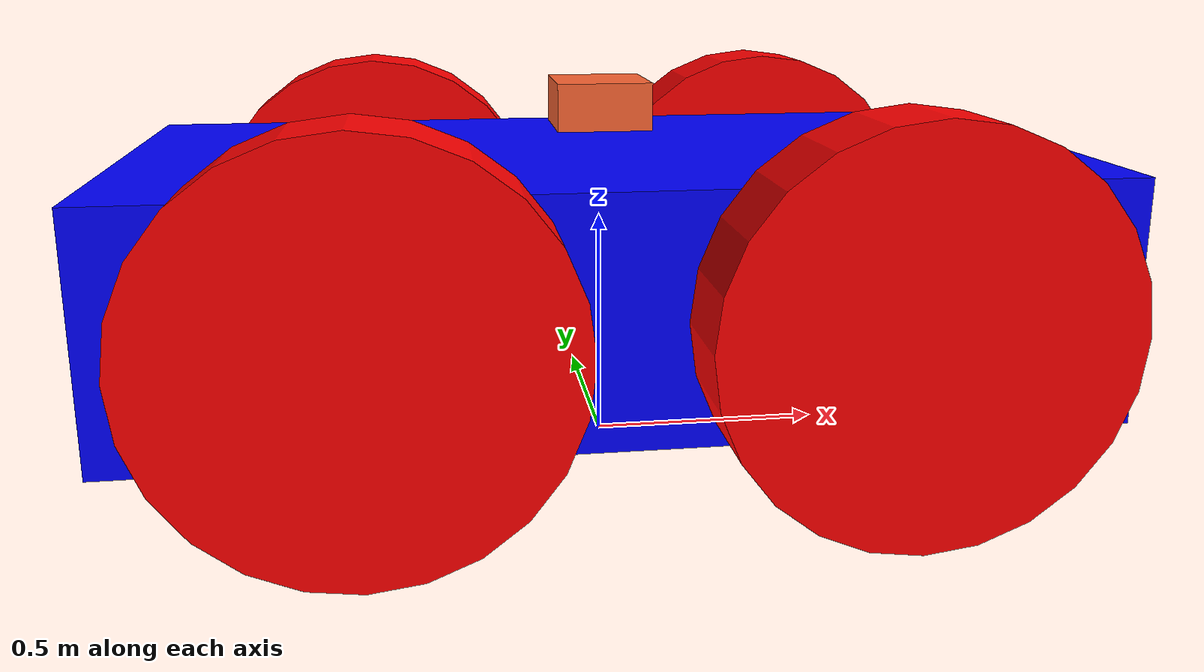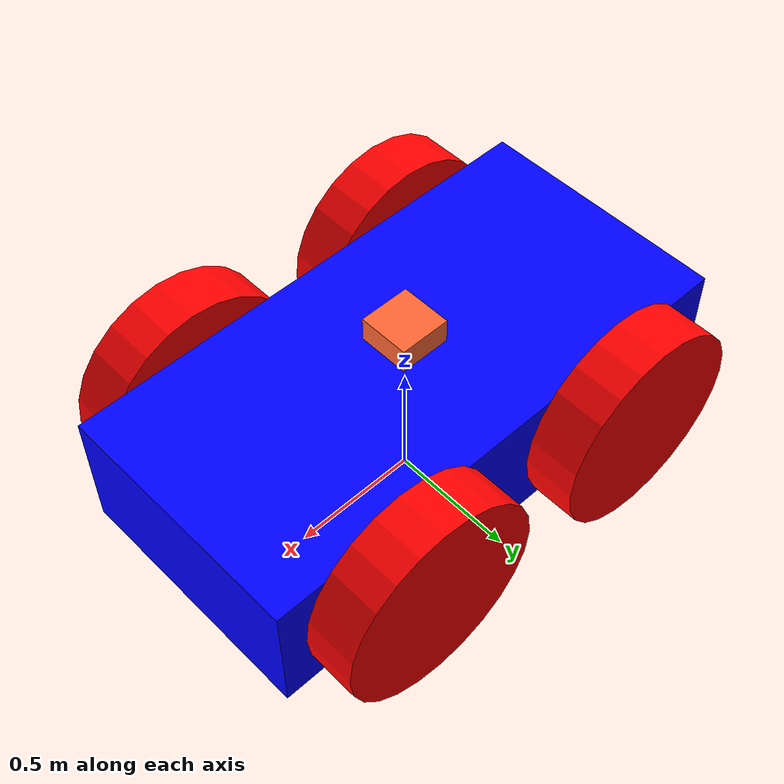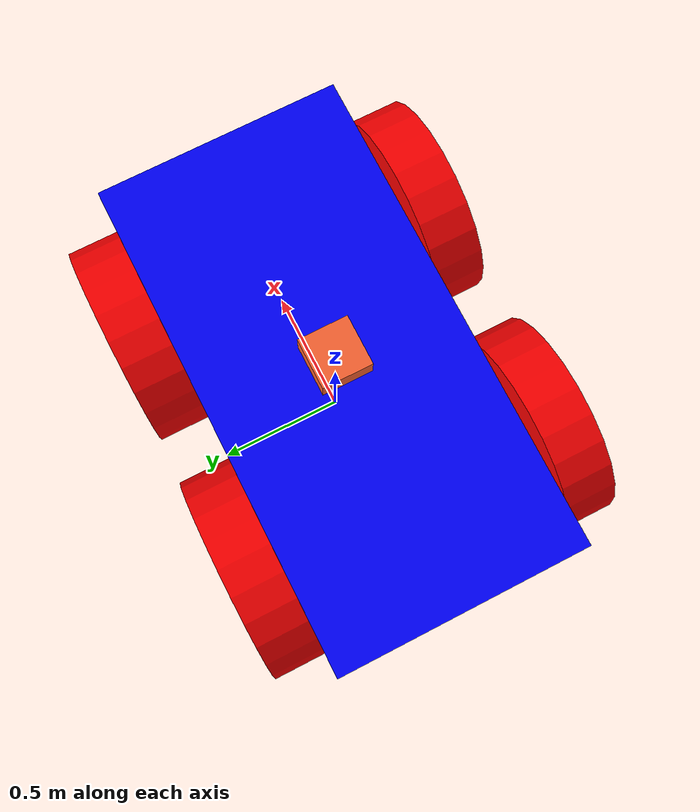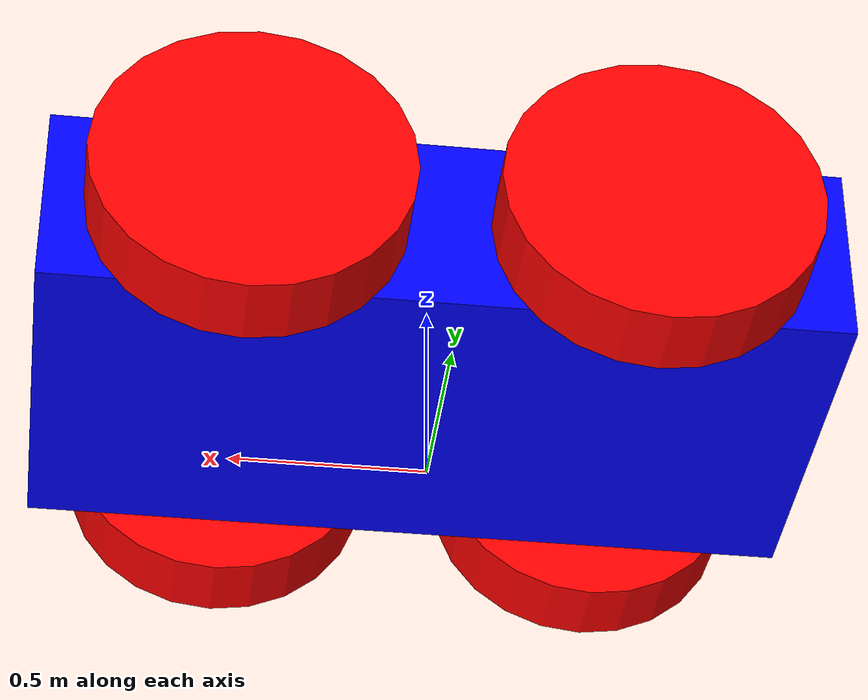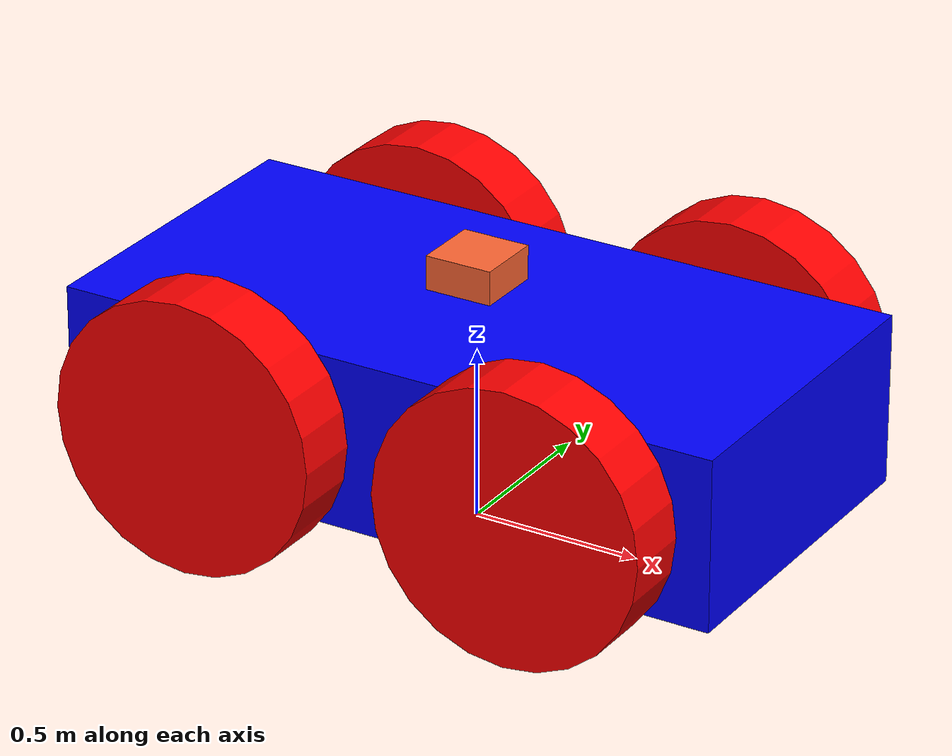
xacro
<?xml version="1.0"?>
<robot xmlns:xacro="http://www.ros.org/wiki/xacro" name="rx_vehicle">
  <xacro:arg name="namespace"          default="robot"/>

  <xacro:property name="ns" value="$(arg namespace)"/>

  <!-- ── Base link (model origin at ground level) ────────────────────────── -->
  <link name="${ns}/base_link"/>

  <joint name="${ns}/base_link_to_chassis" type="fixed">
    <parent link="${ns}/base_link"/>
    <child  link="${ns}/chassis"/>
    <origin xyz="0 0 0.4" rpy="0 0 0"/>
  </joint>

  <!-- ── Chassis ──────────────────────────────────────────────────────────── -->
  <link name="${ns}/chassis">
    <inertial>
      <mass value="1.14395"/>
      <inertia ixx="0.095329" ixy="0" ixz="0" iyy="0.381317" iyz="0" izz="0.476646"/>
    </inertial>
    <visual>
      <geometry>
        <box size="2.0 1.0 0.5"/>
      </geometry>
      <material name="blue">
        <color rgba="0.0 0.0 1.0 1.0"/>
      </material>
    </visual>
    <collision>
      <geometry>
        <box size="2.0 1.0 0.5"/>
      </geometry>
    </collision>
  </link>

  <!-- ── Front left wheel ─────────────────────────────────────────────────── -->
  <link name="${ns}/front_left_wheel">
    <inertial>
      <mass value="1.0"/>
      <inertia ixx="0.043333" ixy="0" ixz="0" iyy="0.043333" iyz="0" izz="0.08"/>
    </inertial>
    <visual>
      <geometry>
        <cylinder radius="0.4" length="0.2"/>
      </geometry>
      <material name="red">
        <color rgba="1.0 0.0 0.0 1.0"/>
      </material>
    </visual>
    <collision>
      <geometry>
        <cylinder radius="0.4" length="0.2"/>
      </geometry>
    </collision>
  </link>

  <joint name="${ns}/front_left_wheel_joint" type="continuous">
    <parent link="${ns}/base_link"/>
    <child link="${ns}/front_left_wheel"/>
    <origin xyz="0.5 0.6 0.4" rpy="-1.5707 0 0"/>
    <axis xyz="0 0 1"/>
  </joint>

  <!-- ── Front right wheel ────────────────────────────────────────────────── -->
  <link name="${ns}/front_right_wheel">
    <inertial>
      <mass value="1.0"/>
      <inertia ixx="0.043333" ixy="0" ixz="0" iyy="0.043333" iyz="0" izz="0.08"/>
    </inertial>
    <visual>
      <geometry>
        <cylinder radius="0.4" length="0.2"/>
      </geometry>
      <material name="red">
        <color rgba="1.0 0.0 0.0 1.0"/>
      </material>
    </visual>
    <collision>
      <geometry>
        <cylinder radius="0.4" length="0.2"/>
      </geometry>
    </collision>
  </link>

  <joint name="${ns}/front_right_wheel_joint" type="continuous">
    <parent link="${ns}/base_link"/>
    <child link="${ns}/front_right_wheel"/>
    <origin xyz="0.5 -0.6 0.4" rpy="-1.5707 0 0"/>
    <axis xyz="0 0 1"/>
  </joint>

  <!-- ── Rear left wheel ──────────────────────────────────────────────────── -->
  <link name="${ns}/rear_left_wheel">
    <inertial>
      <mass value="1.0"/>
      <inertia ixx="0.043333" ixy="0" ixz="0" iyy="0.043333" iyz="0" izz="0.08"/>
    </inertial>
    <visual>
      <geometry>
        <cylinder radius="0.4" length="0.2"/>
      </geometry>
      <material name="red">
        <color rgba="1.0 0.0 0.0 1.0"/>
      </material>
    </visual>
    <collision>
      <geometry>
        <cylinder radius="0.4" length="0.2"/>
      </geometry>
    </collision>
  </link>

  <joint name="${ns}/rear_left_wheel_joint" type="continuous">
    <parent link="${ns}/base_link"/>
    <child link="${ns}/rear_left_wheel"/>
    <origin xyz="-0.5 0.6 0.4" rpy="-1.5707 0 0"/>
    <axis xyz="0 0 1"/>
  </joint>

  <!-- ── Rear right wheel ─────────────────────────────────────────────────── -->
  <link name="${ns}/rear_right_wheel">
    <inertial>
      <mass value="1.0"/>
      <inertia ixx="0.043333" ixy="0" ixz="0" iyy="0.043333" iyz="0" izz="0.08"/>
    </inertial>
    <visual>
      <geometry>
        <cylinder radius="0.4" length="0.2"/>
      </geometry>
      <material name="red">
        <color rgba="1.0 0.0 0.0 1.0"/>
      </material>
    </visual>
    <collision>
      <geometry>
        <cylinder radius="0.4" length="0.2"/>
      </geometry>
    </collision>
  </link>

  <joint name="${ns}/rear_right_wheel_joint" type="continuous">
    <parent link="${ns}/base_link"/>
    <child link="${ns}/rear_right_wheel"/>
    <origin xyz="-0.5 -0.6 0.4" rpy="-1.5707 0 0"/>
    <axis xyz="0 0 1"/>
  </joint>

  <!-- ── RF receiver link ─────────────────────────────────────────────────── -->
  <link name="${ns}/rf_link">
    <inertial>
      <mass value="0.1"/>
      <inertia ixx="0.001" ixy="0" ixz="0" iyy="0.001" iyz="0" izz="0.001"/>
    </inertial>
    <visual>
      <geometry>
        <box size="0.2 0.2 0.1"/>
      </geometry>
      <material name="rx_color">
        <color rgba="1.0 0.4 0.2 1.0"/>
      </material>
    </visual>
    <collision>
      <geometry>
        <box size="0.2 0.2 0.1"/>
      </geometry>
    </collision>
  </link>

  <joint name="${ns}/rf_link_joint" type="fixed">
    <parent link="${ns}/base_link"/>
    <child link="${ns}/rf_link"/>
    <origin xyz="0 0 0.75" rpy="0 0 0"/>
  </joint>

  <!-- ── Gazebo: mobile robot ─────────────────────────────────────────────── -->
  <gazebo>
    <static>false</static>
  </gazebo>

  <!-- ── Gazebo: RF receiver plugin ───────────────────────────────────────── -->
  <gazebo>
    <plugin name="rf_gz::RfModelPlugin" filename="librf_model.so">
      <receiver name="rx_yagi" type="sdf" link="${ns}/rf_link">
        <topic>${ns}/iq</topic>
        <cf_hz>2.4e9</cf_hz>
        <fs_hz>10e6</fs_hz>
        <nf_db>6.0</nf_db>
        <antenna type="yagi">
          <g_peak_dbi>13.0</g_peak_dbi>
          <hpbw_deg>40.0</hpbw_deg>
          <sidelobe_floor_db>-20.0</sidelobe_floor_db>
        </antenna>
      </receiver>
    </plugin>
  </gazebo>

  <!-- ── Gazebo: joint state publisher ───────────────────────────────────── -->
  <gazebo>
    <plugin filename="gz-sim-joint-state-publisher-system"
            name="gz::sim::systems::JointStatePublisher">
      <topic>${ns}/joint_states</topic>
    </plugin>
  </gazebo>

  <gazebo>
    <plugin filename="gz-sim-pose-publisher-system"
            name="gz::sim::systems::PosePublisher">
      <publish_model_pose>true</publish_model_pose>
      <publish_nested_model_pose>true</publish_nested_model_pose>
      <publish_link_pose>false</publish_link_pose>
      <publish_sensor_pose>false</publish_sensor_pose>
      <publish_visual_pose>false</publish_visual_pose>
      <publish_collision_pose>false</publish_collision_pose>
      <use_pose_vector_msg>true</use_pose_vector_msg>
      <!-- bug: publishing static poses crashes gazebo -->
    </plugin>
  </gazebo>

  <!-- ── Gazebo: diff drive ────────────────────────────────────────────────── -->
  <gazebo>
    <plugin filename="gz-sim-diff-drive-system" name="gz::sim::systems::DiffDrive">
      <left_joint>${ns}/front_left_wheel_joint</left_joint>
      <left_joint>${ns}/rear_left_wheel_joint</left_joint>
      <right_joint>${ns}/front_right_wheel_joint</right_joint>
      <right_joint>${ns}/rear_right_wheel_joint</right_joint>
      <wheel_separation>1</wheel_separation>
      <wheel_radius>0.4</wheel_radius>
      <odom_publish_frequency>1</odom_publish_frequency>
      <topic>${ns}/cmd_vel</topic>
      <odom_topic>${ns}/odometry</odom_topic>
      <tf_topic>${ns}/tf</tf_topic>
      <frame_id>${ns}/odom</frame_id>
      <child_frame_id>${ns}/base_link</child_frame_id>
    </plugin>
  </gazebo>

  <gazebo reference="${ns}/rf_link_joint">
    <disableFixedJointLumping>true</disableFixedJointLumping>
    <preserveFixedJoint>true</preserveFixedJoint>
  </gazebo>

</robot>
